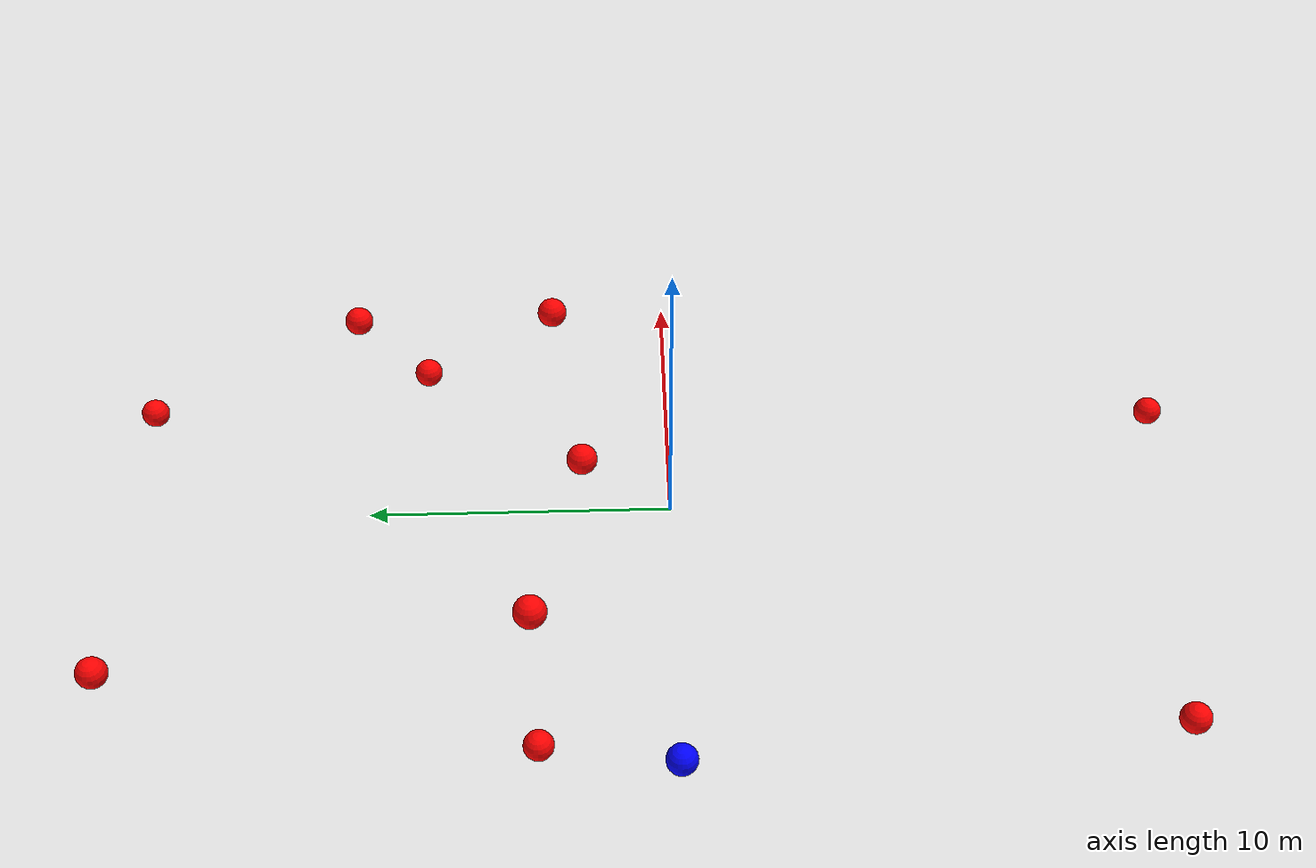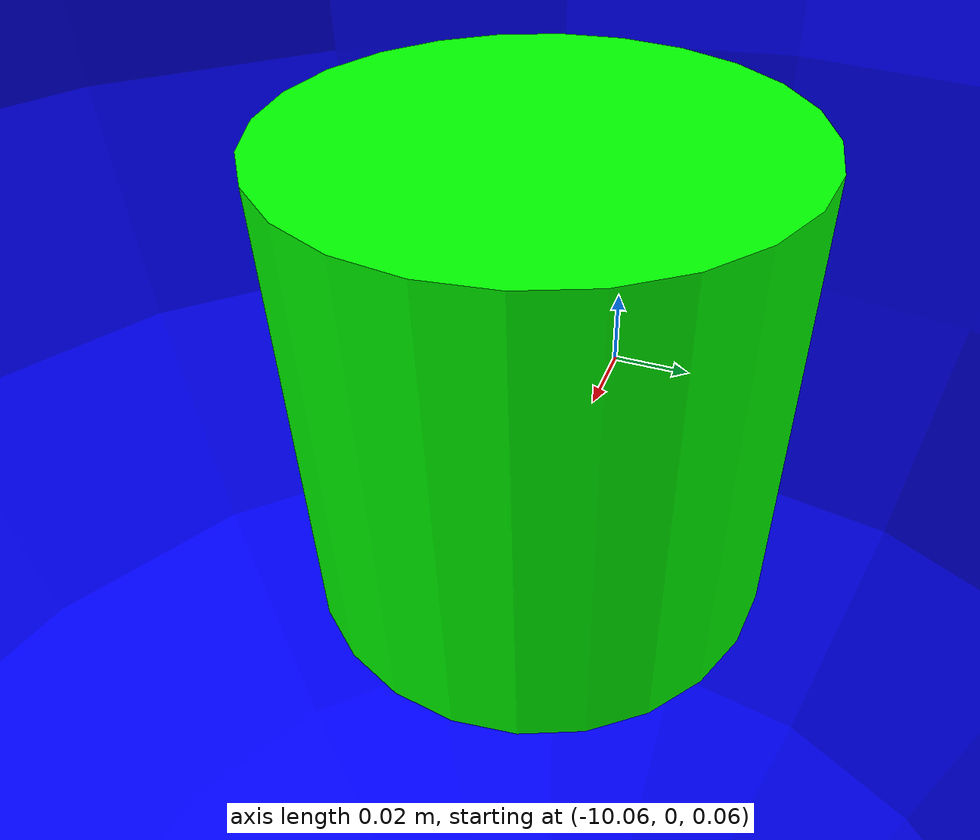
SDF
<?xml version="1.0" ?>
<sdf version="1.8">
    <world name="3d_world">
        <physics name="1ms" type="ode">
            <max_step_size>0.001</max_step_size>
            <real_time_factor>1.0</real_time_factor>
            <real_time_update_rate>1000.0</real_time_update_rate>
        </physics>
        <gravity>0 0 0</gravity>

        <plugin
            filename="gz-sim-physics-system"
            name="gz::sim::v8::systems::Physics">
        </plugin>
        <plugin
            filename="libignition-gazebo-user-commands-system.so"
            name="ignition::gazebo::systems::UserCommands">
        </plugin>
        <plugin
            filename="gz-sim-scene-broadcaster-system"
            name="gz::sim::systems::SceneBroadcaster">
        </plugin>
        <plugin
            filename="gz-sim-sensors-system"
            name="gz::sim::systems::Sensors">
            <render_engine>ogre2</render_engine>
        </plugin>

        <light type="directional" name="sun">
            <cast_shadows>true</cast_shadows>
            <pose>0 0 10 0 0 0</pose>
            <diffuse>0.8 0.8 0.8 1</diffuse>
            <specular>0.2 0.2 0.2 1</specular>
            <attenuation>
                <range>1000</range>
                <constant>0.9</constant>
                <linear>0.01</linear>
                <quadratic>0.001</quadratic>
            </attenuation>
            <direction>-0.5 0.1 -0.9</direction>
        </light>

        <!-- AGENTE -->
        <model name='agente' canonical_link='chassis'>
            <pose relative_to='world'>-10.0 0 0.0 0 0 0</pose>
            <link name='chassis'>
                <pose relative_to='__model__'>0.0 0 0.0 0 0 0</pose>
                <inertial>
                    <mass>1.14395</mass>
                    <inertia>
                        <ixx>0.095329</ixx>
                        <ixy>0</ixy>
                        <ixz>0</ixz>
                        <iyy>0.381317</iyy>
                        <iyz>0</iyz>
                        <izz>0.476646</izz>
                    </inertia>
                </inertial>
                <visual name='visual'>
                    <geometry>
                        <sphere>
                            <radius>0.5</radius>
                        </sphere>
                    </geometry>
                    <material>
                        <ambient>0.0 0.0 1.0 1</ambient>
                        <diffuse>0.0 0.0 1.0 1</diffuse>
                        <specular>0.0 0.0 1.0 1</specular>
                    </material>
                </visual>
                <collision name='collision'>
                    <geometry>
                        <sphere>
                            <radius>0.5</radius>
                        </sphere>
                    </geometry>
                </collision>
                <enable_gravity>false</enable_gravity>
            </link>

            <link name='lidar_link'>
                <pose relative_to='chassis'>0.0 0 0.1 0 0 0</pose>
                <inertial>
                    <mass>0.1</mass>
                    <inertia>
                        <ixx>0.000166667</ixx>
                        <iyy>0.000166667</iyy>
                        <izz>0.000166667</izz>
                    </inertia>
                </inertial>
                <collision name='collision'>
                    <geometry>
                        <cylinder>
                            <radius>0.05</radius>
                            <length>0.1</length>
                        </cylinder>
                    </geometry>
                </collision>
                <visual name='visual'>
                    <geometry>
                        <cylinder>
                            <radius>0.05</radius>
                            <length>0.1</length>
                        </cylinder>
                    </geometry>
                    <material>
                        <ambient>0.0 1.0 0.0 1</ambient>
                        <diffuse>0.0 1.0 0.0 1</diffuse>
                        <specular>0.0 1.0 0.0 1</specular>
                    </material>
                </visual>
                <sensor name="lidar" type="gpu_lidar">
                    <topic>scan</topic>
                    <update_rate>10</update_rate>
                    <lidar>
                        <scan>
                            <horizontal>
                                <samples>5000</samples>
                                <resolution>1</resolution>
                                <min_angle>-3.14159</min_angle>
                                <max_angle>3.14159</max_angle>
                            </horizontal>
                        </scan>
                        <range>
                            <min>0.1</min>
                            <max>10.0</max>
                            <resolution>0.01</resolution>
                        </range>
                    </lidar>
                    <visualize>true</visualize>
                    <always_on>true</always_on>
                    <update_rate>10</update_rate>
                    <pose_frame>lidar</pose_frame>
                </sensor>
                <enable_gravity>false</enable_gravity>
            </link>

            <joint name="lidar_joint" type="fixed">
                <parent>chassis</parent>
                <child>lidar_link</child>
            </joint>

            <plugin
                filename="ignition-gazebo-joint-state-publisher-system"
                name="ignition::gazebo::systems::JointStatePublisher">
            </plugin>
            <plugin
                filename="ignition-gazebo-odometry-publisher-system"
                name="ignition::gazebo::systems::OdometryPublisher">
                <dimensions>3</dimensions>
            </plugin>
            <plugin
                filename="ignition-gazebo-velocity-control-system"
                name="ignition::gazebo::systems::VelocityControl">
                <initial_linear>0.0 0 0</initial_linear>
                <initial_angular>0 0 0.0</initial_angular>
            </plugin>
            <plugin
                filename="libignition-gazebo-pose-publisher-system.so"
                name="ignition::gazebo::systems::PosePublisher">
                <topic>/agente/pose</topic>
                <frame_id>agente</frame_id>
                <update_rate>30</update_rate>
            </plugin>
        </model>

        <!-- OBSTACLE 1 -->
        <model name='obstacle_1' canonical_link='obstacle'>
            <static>false</static>
            <pose relative_to='world'>7.03 -18.17 -2.74 0 0 0</pose>
            <link name='obstacle'>
                <pose relative_to='__model__'>0.0 0 0.0 0 0 0</pose>
                <visual name='visual'>
                    <geometry>
                        <sphere>
                            <radius>0.50</radius>
                        </sphere>
                    </geometry>
                    <material>
                        <ambient>1.0 0.0 0.0 1</ambient>
                        <diffuse>1.0 0.0 0.0 1</diffuse>
                        <specular>1.0 0.0 0.0 1</specular>
                    </material>
                </visual>
                <collision name='collision'>
                    <geometry>
                        <sphere>
                            <radius>0.50</radius>
                        </sphere>
                    </geometry>
                </collision>
                <enable_gravity>false</enable_gravity>
            </link>

            <plugin
                filename="ignition-gazebo-velocity-control-system"
                name="ignition::gazebo::systems::VelocityControl">
                <initial_linear>-0.88 1.78 0.27</initial_linear>
                <initial_angular>0 0 0</initial_angular>
            </plugin>

            <plugin
                filename="ignition-gazebo-odometry-publisher-system"
                name="ignition::gazebo::systems::OdometryPublisher">
                <dimensions>3</dimensions>
            </plugin>
        </model>

        <!-- OBSTACLE 2 -->
        <model name='obstacle_2' canonical_link='obstacle'>
            <static>false</static>
            <pose relative_to='world'>-0.10 2.88 2.62 0 0 0</pose>
            <link name='obstacle'>
                <pose relative_to='__model__'>0.0 0 0.0 0 0 0</pose>
                <visual name='visual'>
                    <geometry>
                        <sphere>
                            <radius>0.50</radius>
                        </sphere>
                    </geometry>
                    <material>
                        <ambient>1.0 0.0 0.0 1</ambient>
                        <diffuse>1.0 0.0 0.0 1</diffuse>
                        <specular>1.0 0.0 0.0 1</specular>
                    </material>
                </visual>
                <collision name='collision'>
                    <geometry>
                        <sphere>
                            <radius>0.50</radius>
                        </sphere>
                    </geometry>
                </collision>
                <enable_gravity>false</enable_gravity>
            </link>

            <plugin
                filename="ignition-gazebo-velocity-control-system"
                name="ignition::gazebo::systems::VelocityControl">
                <initial_linear>0.49 -0.58 -0.53</initial_linear>
                <initial_angular>0 0 0</initial_angular>
            </plugin>

            <plugin
                filename="ignition-gazebo-odometry-publisher-system"
                name="ignition::gazebo::systems::OdometryPublisher">
                <dimensions>3</dimensions>
            </plugin>
        </model>

        <!-- OBSTACLE 3 -->
        <model name='obstacle_3' canonical_link='obstacle'>
            <static>false</static>
            <pose relative_to='world'>-8.00 4.30 4.59 0 0 0</pose>
            <link name='obstacle'>
                <pose relative_to='__model__'>0.0 0 0.0 0 0 0</pose>
                <visual name='visual'>
                    <geometry>
                        <sphere>
                            <radius>0.50</radius>
                        </sphere>
                    </geometry>
                    <material>
                        <ambient>1.0 0.0 0.0 1</ambient>
                        <diffuse>1.0 0.0 0.0 1</diffuse>
                        <specular>1.0 0.0 0.0 1</specular>
                    </material>
                </visual>
                <collision name='collision'>
                    <geometry>
                        <sphere>
                            <radius>0.50</radius>
                        </sphere>
                    </geometry>
                </collision>
                <enable_gravity>false</enable_gravity>
            </link>

            <plugin
                filename="ignition-gazebo-velocity-control-system"
                name="ignition::gazebo::systems::VelocityControl">
                <initial_linear>1.74 -0.68 -0.73</initial_linear>
                <initial_angular>0 0 0</initial_angular>
            </plugin>

            <plugin
                filename="ignition-gazebo-odometry-publisher-system"
                name="ignition::gazebo::systems::OdometryPublisher">
                <dimensions>3</dimensions>
            </plugin>
        </model>

        <!-- OBSTACLE 4 -->
        <model name='obstacle_4' canonical_link='obstacle'>
            <static>false</static>
            <pose relative_to='world'>7.30 18.77 -2.09 0 0 0</pose>
            <link name='obstacle'>
                <pose relative_to='__model__'>0.0 0 0.0 0 0 0</pose>
                <visual name='visual'>
                    <geometry>
                        <sphere>
                            <radius>0.50</radius>
                        </sphere>
                    </geometry>
                    <material>
                        <ambient>1.0 0.0 0.0 1</ambient>
                        <diffuse>1.0 0.0 0.0 1</diffuse>
                        <specular>1.0 0.0 0.0 1</specular>
                    </material>
                </visual>
                <collision name='collision'>
                    <geometry>
                        <sphere>
                            <radius>0.50</radius>
                        </sphere>
                    </geometry>
                </collision>
                <enable_gravity>false</enable_gravity>
            </link>

            <plugin
                filename="ignition-gazebo-velocity-control-system"
                name="ignition::gazebo::systems::VelocityControl">
                <initial_linear>-0.65 -1.88 0.21</initial_linear>
                <initial_angular>0 0 0</initial_angular>
            </plugin>

            <plugin
                filename="ignition-gazebo-odometry-publisher-system"
                name="ignition::gazebo::systems::OdometryPublisher">
                <dimensions>3</dimensions>
            </plugin>
        </model>

        <!-- OBSTACLE 5 -->
        <model name='obstacle_5' canonical_link='obstacle'>
            <static>false</static>
            <pose relative_to='world'>-8.13 4.36 -1.79 0 0 0</pose>
            <link name='obstacle'>
                <pose relative_to='__model__'>0.0 0 0.0 0 0 0</pose>
                <visual name='visual'>
                    <geometry>
                        <sphere>
                            <radius>0.50</radius>
                        </sphere>
                    </geometry>
                    <material>
                        <ambient>1.0 0.0 0.0 1</ambient>
                        <diffuse>1.0 0.0 0.0 1</diffuse>
                        <specular>1.0 0.0 0.0 1</specular>
                    </material>
                </visual>
                <collision name='collision'>
                    <geometry>
                        <sphere>
                            <radius>0.50</radius>
                        </sphere>
                    </geometry>
                </collision>
                <enable_gravity>false</enable_gravity>
            </link>

            <plugin
                filename="ignition-gazebo-velocity-control-system"
                name="ignition::gazebo::systems::VelocityControl">
                <initial_linear>1.53 -1.19 0.49</initial_linear>
                <initial_angular>0 0 0</initial_angular>
            </plugin>

            <plugin
                filename="ignition-gazebo-odometry-publisher-system"
                name="ignition::gazebo::systems::OdometryPublisher">
                <dimensions>3</dimensions>
            </plugin>
        </model>

        <!-- OBSTACLE 6 -->
        <model name='obstacle_6' canonical_link='obstacle'>
            <static>false</static>
            <pose relative_to='world'>6.96 3.92 2.74 0 0 0</pose>
            <link name='obstacle'>
                <pose relative_to='__model__'>0.0 0 0.0 0 0 0</pose>
                <visual name='visual'>
                    <geometry>
                        <sphere>
                            <radius>0.50</radius>
                        </sphere>
                    </geometry>
                    <material>
                        <ambient>1.0 0.0 0.0 1</ambient>
                        <diffuse>1.0 0.0 0.0 1</diffuse>
                        <specular>1.0 0.0 0.0 1</specular>
                    </material>
                </visual>
                <collision name='collision'>
                    <geometry>
                        <sphere>
                            <radius>0.50</radius>
                        </sphere>
                    </geometry>
                </collision>
                <enable_gravity>false</enable_gravity>
            </link>

            <plugin
                filename="ignition-gazebo-velocity-control-system"
                name="ignition::gazebo::systems::VelocityControl">
                <initial_linear>-0.62 -0.72 -0.50</initial_linear>
                <initial_angular>0 0 0</initial_angular>
            </plugin>

            <plugin
                filename="ignition-gazebo-odometry-publisher-system"
                name="ignition::gazebo::systems::OdometryPublisher">
                <dimensions>3</dimensions>
            </plugin>
        </model>

        <!-- OBSTACLE 7 -->
        <model name='obstacle_7' canonical_link='obstacle'>
            <static>false</static>
            <pose relative_to='world'>9.00 11.07 0.73 0 0 0</pose>
            <link name='obstacle'>
                <pose relative_to='__model__'>0.0 0 0.0 0 0 0</pose>
                <visual name='visual'>
                    <geometry>
                        <sphere>
                            <radius>0.50</radius>
                        </sphere>
                    </geometry>
                    <material>
                        <ambient>1.0 0.0 0.0 1</ambient>
                        <diffuse>1.0 0.0 0.0 1</diffuse>
                        <specular>1.0 0.0 0.0 1</specular>
                    </material>
                </visual>
                <collision name='collision'>
                    <geometry>
                        <sphere>
                            <radius>0.50</radius>
                        </sphere>
                    </geometry>
                </collision>
                <enable_gravity>false</enable_gravity>
            </link>

            <plugin
                filename="ignition-gazebo-velocity-control-system"
                name="ignition::gazebo::systems::VelocityControl">
                <initial_linear>-1.31 -1.51 -0.10</initial_linear>
                <initial_angular>0 0 0</initial_angular>
            </plugin>

            <plugin
                filename="ignition-gazebo-odometry-publisher-system"
                name="ignition::gazebo::systems::OdometryPublisher">
                <dimensions>3</dimensions>
            </plugin>
        </model>

        <!-- OBSTACLE 8 -->
        <model name='obstacle_8' canonical_link='obstacle'>
            <static>false</static>
            <pose relative_to='world'>8.63 8.72 -1.56 0 0 0</pose>
            <link name='obstacle'>
                <pose relative_to='__model__'>0.0 0 0.0 0 0 0</pose>
                <visual name='visual'>
                    <geometry>
                        <sphere>
                            <radius>0.50</radius>
                        </sphere>
                    </geometry>
                    <material>
                        <ambient>1.0 0.0 0.0 1</ambient>
                        <diffuse>1.0 0.0 0.0 1</diffuse>
                        <specular>1.0 0.0 0.0 1</specular>
                    </material>
                </visual>
                <collision name='collision'>
                    <geometry>
                        <sphere>
                            <radius>0.50</radius>
                        </sphere>
                    </geometry>
                </collision>
                <enable_gravity>false</enable_gravity>
            </link>

            <plugin
                filename="ignition-gazebo-velocity-control-system"
                name="ignition::gazebo::systems::VelocityControl">
                <initial_linear>-1.61 -1.17 0.21</initial_linear>
                <initial_angular>0 0 0</initial_angular>
            </plugin>

            <plugin
                filename="ignition-gazebo-odometry-publisher-system"
                name="ignition::gazebo::systems::OdometryPublisher">
                <dimensions>3</dimensions>
            </plugin>
        </model>

        <!-- OBSTACLE 9 -->
        <model name='obstacle_9' canonical_link='obstacle'>
            <static>false</static>
            <pose relative_to='world'>-8.52 -15.78 -0.61 0 0 0</pose>
            <link name='obstacle'>
                <pose relative_to='__model__'>0.0 0 0.0 0 0 0</pose>
                <visual name='visual'>
                    <geometry>
                        <sphere>
                            <radius>0.50</radius>
                        </sphere>
                    </geometry>
                    <material>
                        <ambient>1.0 0.0 0.0 1</ambient>
                        <diffuse>1.0 0.0 0.0 1</diffuse>
                        <specular>1.0 0.0 0.0 1</specular>
                    </material>
                </visual>
                <collision name='collision'>
                    <geometry>
                        <sphere>
                            <radius>0.50</radius>
                        </sphere>
                    </geometry>
                </collision>
                <enable_gravity>false</enable_gravity>
            </link>

            <plugin
                filename="ignition-gazebo-velocity-control-system"
                name="ignition::gazebo::systems::VelocityControl">
                <initial_linear>0.46 1.94 0.07</initial_linear>
                <initial_angular>0 0 0</initial_angular>
            </plugin>

            <plugin
                filename="ignition-gazebo-odometry-publisher-system"
                name="ignition::gazebo::systems::OdometryPublisher">
                <dimensions>3</dimensions>
            </plugin>
        </model>

        <!-- OBSTACLE 10 -->
        <model name='obstacle_10' canonical_link='obstacle'>
            <static>false</static>
            <pose relative_to='world'>-6.84 17.79 0.72 0 0 0</pose>
            <link name='obstacle'>
                <pose relative_to='__model__'>0.0 0 0.0 0 0 0</pose>
                <visual name='visual'>
                    <geometry>
                        <sphere>
                            <radius>0.50</radius>
                        </sphere>
                    </geometry>
                    <material>
                        <ambient>1.0 0.0 0.0 1</ambient>
                        <diffuse>1.0 0.0 0.0 1</diffuse>
                        <specular>1.0 0.0 0.0 1</specular>
                    </material>
                </visual>
                <collision name='collision'>
                    <geometry>
                        <sphere>
                            <radius>0.50</radius>
                        </sphere>
                    </geometry>
                </collision>
                <enable_gravity>false</enable_gravity>
            </link>

            <plugin
                filename="ignition-gazebo-velocity-control-system"
                name="ignition::gazebo::systems::VelocityControl">
                <initial_linear>0.23 -1.98 -0.08</initial_linear>
                <initial_angular>0 0 0</initial_angular>
            </plugin>

            <plugin
                filename="ignition-gazebo-odometry-publisher-system"
                name="ignition::gazebo::systems::OdometryPublisher">
                <dimensions>3</dimensions>
            </plugin>
        </model>

    </world>
</sdf>
